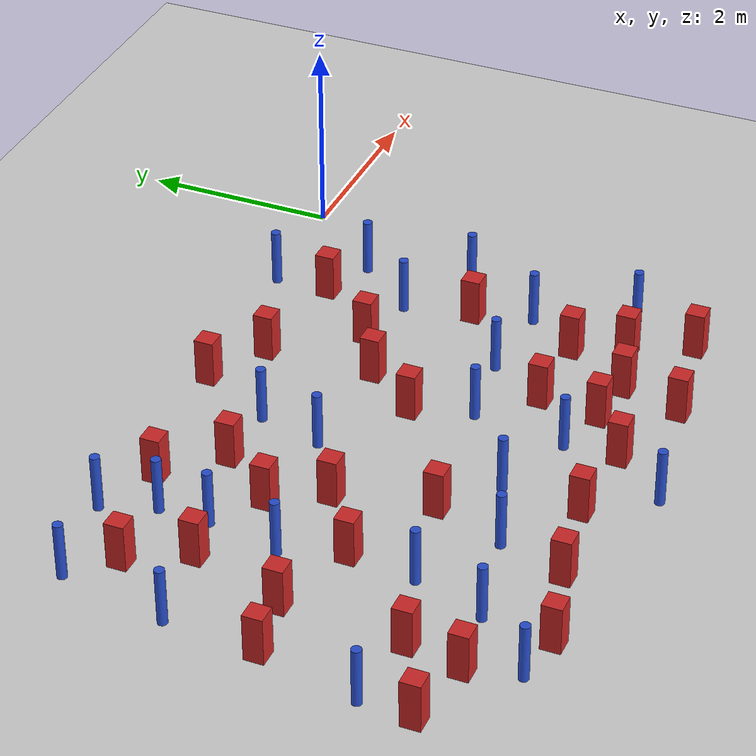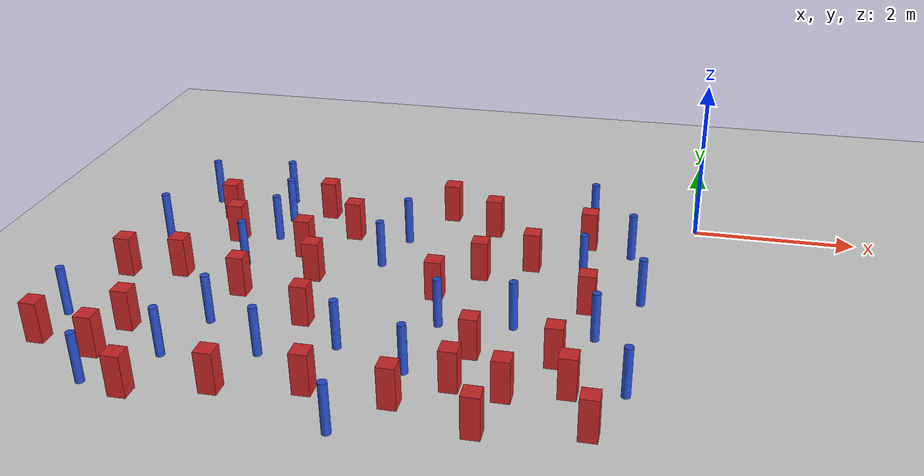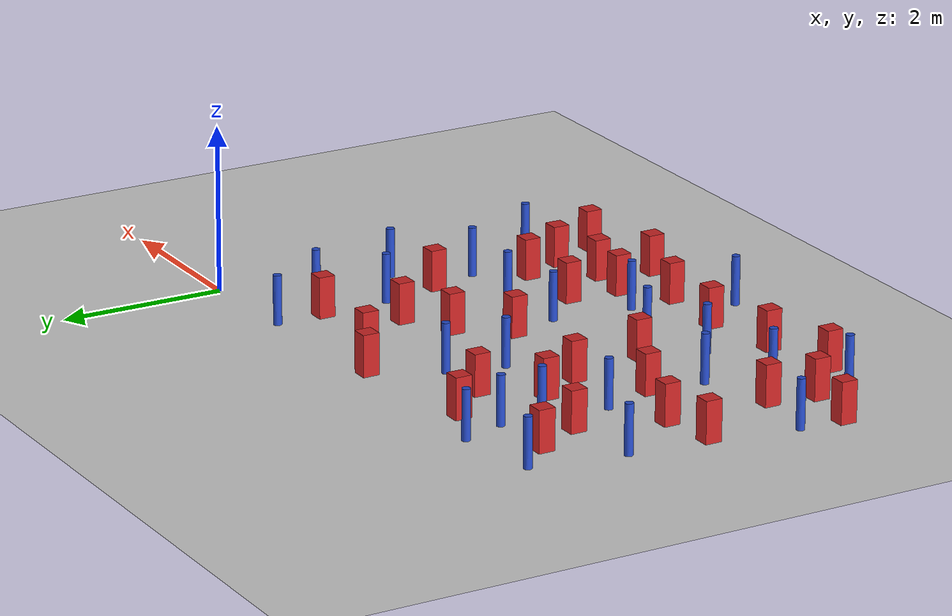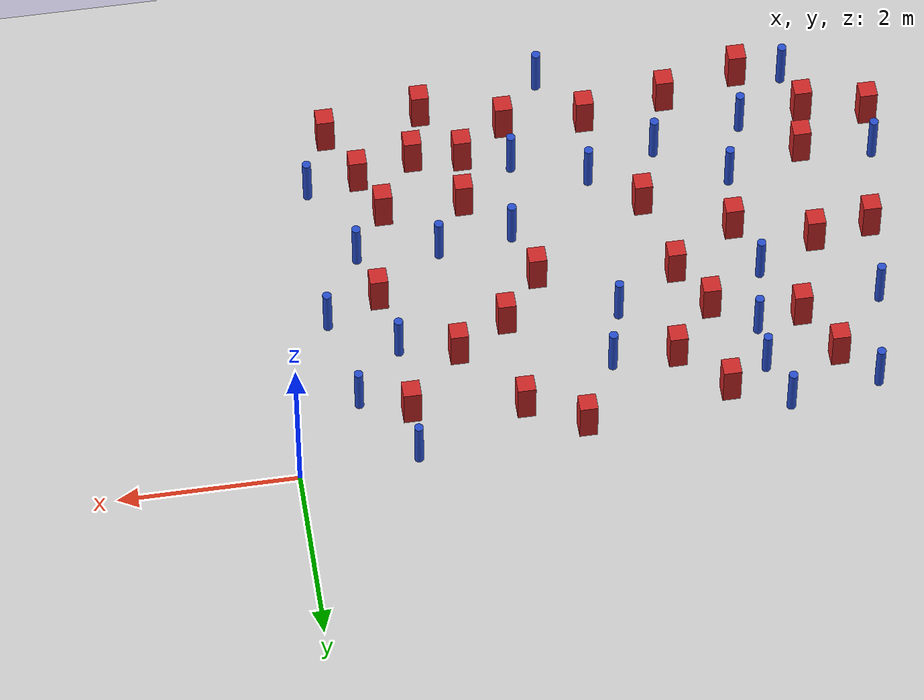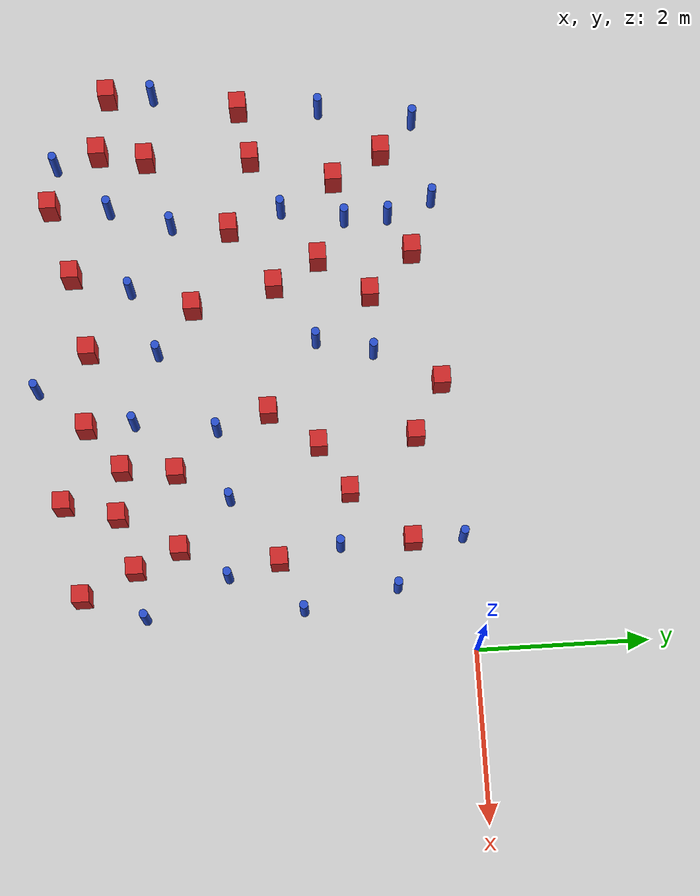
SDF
<sdf version="1.6">
 <world name="default">
  <model name="ground_plane">
   <static>1</static>
   <link name="link">
    <collision name="collision">
     <geometry><plane><normal>0 0 1</normal><size>100 100</size></plane></geometry>
     <surface><friction><ode><mu>100</mu><mu2>50</mu2></ode></friction></surface>
    </collision>
    <visual name="visual">
     <cast_shadows>0</cast_shadows>
     <geometry><plane><normal>0 0 1</normal><size>100 100</size></plane></geometry>
     <material>
      <ambient>1.0 1.0 1.0 1.0</ambient>
      <diffuse>0.8 0.8 0.8 1.0</diffuse>
      <specular>0.01 0.01 0.01 1.000000</specular>
     </material>
    </visual>
   </link>
  </model>
  <model name="square_post_obstacle2">
   <static>true</static>
   <pose>-1.97392428665 -4.67778224136 1.91545236811e-07 -7.35059704564e-06 1.12565212e-07 2.39332434364e-05</pose>
   <link name="link">
    <pose>0 0 0.25 0 -0 0</pose>
    <inertial>
     <mass>100</mass>
     <inertia>
      <ixx>0.166667</ixx>
      <ixy>0</ixy>
      <ixz>0</ixz>
      <iyy>0.166667</iyy>
      <iyz>0</iyz>
      <izz>0.166667</izz>
     </inertia>
    </inertial>
    <collision name="collision"><geometry><box><size>.2 .2 .5</size></box></geometry></collision>
    <visual name="visual">
     <geometry><box><size>.2 .2 .5</size></box></geometry>
     <material>
      <script><name>Gazebo/Red</name><uri>file://media/materials/scripts/gazebo.material</uri></script>
     </material>
    </visual>
   </link>
  </model>
  <model name="pole_obstacle3">
   <static>true</static>
   <pose>-2.89417251278 -3.81996052843 7.38925637345e-09 -8.47170692798e-08 1.24976764939e-08 -1.74513093025e-07</pose>
   <link name="link">
    <pose>0 0 0.3 0 -0 0</pose>
    <inertial>
     <mass>1</mass>
     <inertia><ixx>0.145833</ixx><ixy>0</ixy><ixz>0</ixz><iyy>0.145833</iyy><iyz>0</iyz><izz>0.125</izz></inertia>
    </inertial>
    <collision name="collision">
     <geometry><cylinder><radius>0.05</radius><length>.6</length></cylinder></geometry>
    </collision>
    <visual name="visual">
     <geometry><cylinder><radius>0.05</radius><length>.6</length></cylinder></geometry>
     <material>
      <script><name>Gazebo/Blue</name><uri>file://media/materials/scripts/gazebo.material</uri></script>
     </material>
    </visual>
   </link>
  </model>
  <model name="square_post_obstacle6">
   <static>true</static>
   <pose>-4.81822613164 -0.429306550397 1.91545236811e-07 -7.35059704564e-06 1.12565212e-07 2.39332434364e-05</pose>
   <link name="link">
    <pose>0 0 0.25 0 -0 0</pose>
    <inertial>
     <mass>100</mass>
     <inertia>
      <ixx>0.166667</ixx>
      <ixy>0</ixy>
      <ixz>0</ixz>
      <iyy>0.166667</iyy>
      <iyz>0</iyz>
      <izz>0.166667</izz>
     </inertia>
    </inertial>
    <collision name="collision"><geometry><box><size>.2 .2 .5</size></box></geometry></collision>
    <visual name="visual">
     <geometry><box><size>.2 .2 .5</size></box></geometry>
     <material>
      <script><name>Gazebo/Red</name><uri>file://media/materials/scripts/gazebo.material</uri></script>
     </material>
    </visual>
   </link>
  </model>
  <model name="square_post_obstacle11">
   <static>true</static>
   <pose>-4.27293090781 -3.06913041119 1.91545236811e-07 -7.35059704564e-06 1.12565212e-07 2.39332434364e-05</pose>
   <link name="link">
    <pose>0 0 0.25 0 -0 0</pose>
    <inertial>
     <mass>100</mass>
     <inertia>
      <ixx>0.166667</ixx>
      <ixy>0</ixy>
      <ixz>0</ixz>
      <iyy>0.166667</iyy>
      <iyz>0</iyz>
      <izz>0.166667</izz>
     </inertia>
    </inertial>
    <collision name="collision"><geometry><box><size>.2 .2 .5</size></box></geometry></collision>
    <visual name="visual">
     <geometry><box><size>.2 .2 .5</size></box></geometry>
     <material>
      <script><name>Gazebo/Red</name><uri>file://media/materials/scripts/gazebo.material</uri></script>
     </material>
    </visual>
   </link>
  </model>
  <model name="square_post_obstacle21">
   <static>true</static>
   <pose>-5.22307568444 -2.58926652539 1.91545236811e-07 -7.35059704564e-06 1.12565212e-07 2.39332434364e-05</pose>
   <link name="link">
    <pose>0 0 0.25 0 -0 0</pose>
    <inertial>
     <mass>100</mass>
     <inertia>
      <ixx>0.166667</ixx>
      <ixy>0</ixy>
      <ixz>0</ixz>
      <iyy>0.166667</iyy>
      <iyz>0</iyz>
      <izz>0.166667</izz>
     </inertia>
    </inertial>
    <collision name="collision"><geometry><box><size>.2 .2 .5</size></box></geometry></collision>
    <visual name="visual">
     <geometry><box><size>.2 .2 .5</size></box></geometry>
     <material>
      <script><name>Gazebo/Red</name><uri>file://media/materials/scripts/gazebo.material</uri></script>
     </material>
    </visual>
   </link>
  </model>
  <model name="square_post_obstacle28">
   <static>true</static>
   <pose>-2.51509299981 -1.67289607475 1.91545236811e-07 -7.35059704564e-06 1.12565212e-07 2.39332434364e-05</pose>
   <link name="link">
    <pose>0 0 0.25 0 -0 0</pose>
    <inertial>
     <mass>100</mass>
     <inertia>
      <ixx>0.166667</ixx>
      <ixy>0</ixy>
      <ixz>0</ixz>
      <iyy>0.166667</iyy>
      <iyz>0</iyz>
      <izz>0.166667</izz>
     </inertia>
    </inertial>
    <collision name="collision"><geometry><box><size>.2 .2 .5</size></box></geometry></collision>
    <visual name="visual">
     <geometry><box><size>.2 .2 .5</size></box></geometry>
     <material>
      <script><name>Gazebo/Red</name><uri>file://media/materials/scripts/gazebo.material</uri></script>
     </material>
    </visual>
   </link>
  </model>
  <model name="square_post_obstacle32">
   <static>true</static>
   <pose>-0.869865250518 -4.49653832143 1.91545236811e-07 -7.35059704564e-06 1.12565212e-07 2.39332434364e-05</pose>
   <link name="link">
    <pose>0 0 0.25 0 -0 0</pose>
    <inertial>
     <mass>100</mass>
     <inertia>
      <ixx>0.166667</ixx>
      <ixy>0</ixy>
      <ixz>0</ixz>
      <iyy>0.166667</iyy>
      <iyz>0</iyz>
      <izz>0.166667</izz>
     </inertia>
    </inertial>
    <collision name="collision"><geometry><box><size>.2 .2 .5</size></box></geometry></collision>
    <visual name="visual">
     <geometry><box><size>.2 .2 .5</size></box></geometry>
     <material>
      <script><name>Gazebo/Red</name><uri>file://media/materials/scripts/gazebo.material</uri></script>
     </material>
    </visual>
   </link>
  </model>
  <model name="pole_obstacle28">
   <static>true</static>
   <pose>-4.52370034235 -3.79873503142 7.38925637345e-09 -8.47170692798e-08 1.24976764937e-08 -1.74513093023e-07</pose>
   <link name="link">
    <pose>0 0 0.3 0 -0 0</pose>
    <inertial>
     <mass>1</mass>
     <inertia><ixx>0.145833</ixx><ixy>0</ixy><ixz>0</ixz><iyy>0.145833</iyy><iyz>0</iyz><izz>0.125</izz></inertia>
    </inertial>
    <collision name="collision">
     <geometry><cylinder><radius>0.05</radius><length>.6</length></cylinder></geometry>
    </collision>
    <visual name="visual">
     <geometry><cylinder><radius>0.05</radius><length>.6</length></cylinder></geometry>
     <material>
      <script><name>Gazebo/Blue</name><uri>file://media/materials/scripts/gazebo.material</uri></script>
     </material>
    </visual>
   </link>
  </model>
  <model name="pole_obstacle30">
   <static>true</static>
   <pose>-6.13165732457 -4.62961486405 7.38925637345e-09 -8.47170692796e-08 1.24976764786e-08 -1.74513093032e-07</pose>
   <link name="link">
    <pose>0 0 0.3 0 -0 0</pose>
    <inertial>
     <mass>1</mass>
     <inertia><ixx>0.145833</ixx><ixy>0</ixy><ixz>0</ixz><iyy>0.145833</iyy><iyz>0</iyz><izz>0.125</izz></inertia>
    </inertial>
    <collision name="collision">
     <geometry><cylinder><radius>0.05</radius><length>.6</length></cylinder></geometry>
    </collision>
    <visual name="visual">
     <geometry><cylinder><radius>0.05</radius><length>.6</length></cylinder></geometry>
     <material>
      <script><name>Gazebo/Blue</name><uri>file://media/materials/scripts/gazebo.material</uri></script>
     </material>
    </visual>
   </link>
  </model>
  <model name="square_post_obstacle37">
   <static>true</static>
   <pose>-2.56019366507 -0.532557655933 1.91545236811e-07 -7.35059704564e-06 1.12565212e-07 2.39332434364e-05</pose>
   <link name="link">
    <pose>0 0 0.25 0 -0 0</pose>
    <inertial>
     <mass>100</mass>
     <inertia>
      <ixx>0.166667</ixx>
      <ixy>0</ixy>
      <ixz>0</ixz>
      <iyy>0.166667</iyy>
      <iyz>0</iyz>
      <izz>0.166667</izz>
     </inertia>
    </inertial>
    <collision name="collision"><geometry><box><size>.2 .2 .5</size></box></geometry></collision>
    <visual name="visual">
     <geometry><box><size>.2 .2 .5</size></box></geometry>
     <material>
      <script><name>Gazebo/Red</name><uri>file://media/materials/scripts/gazebo.material</uri></script>
     </material>
    </visual>
   </link>
  </model>
  <model name="pole_obstacle39">
   <static>true</static>
   <pose>-6.67404969562 -1.43670576364 7.38925637345e-09 -8.471706928e-08 1.24976765134e-08 -1.74513093015e-07</pose>
   <link name="link">
    <pose>0 0 0.3 0 -0 0</pose>
    <inertial>
     <mass>1</mass>
     <inertia><ixx>0.145833</ixx><ixy>0</ixy><ixz>0</ixz><iyy>0.145833</iyy><iyz>0</iyz><izz>0.125</izz></inertia>
    </inertial>
    <collision name="collision">
     <geometry><cylinder><radius>0.05</radius><length>.6</length></cylinder></geometry>
    </collision>
    <visual name="visual">
     <geometry><cylinder><radius>0.05</radius><length>.6</length></cylinder></geometry>
     <material>
      <script><name>Gazebo/Blue</name><uri>file://media/materials/scripts/gazebo.material</uri></script>
     </material>
    </visual>
   </link>
  </model>
  <model name="square_post_obstacle40">
   <static>true</static>
   <pose>-1.16608917577 -2.20801848528 1.91545236811e-07 -7.35059704564e-06 1.12565212e-07 2.39332434364e-05</pose>
   <link name="link">
    <pose>0 0 0.25 0 -0 0</pose>
    <inertial>
     <mass>100</mass>
     <inertia>
      <ixx>0.166667</ixx>
      <ixy>0</ixy>
      <ixz>0</ixz>
      <iyy>0.166667</iyy>
      <iyz>0</iyz>
      <izz>0.166667</izz>
     </inertia>
    </inertial>
    <collision name="collision"><geometry><box><size>.2 .2 .5</size></box></geometry></collision>
    <visual name="visual">
     <geometry><box><size>.2 .2 .5</size></box></geometry>
     <material>
      <script><name>Gazebo/Red</name><uri>file://media/materials/scripts/gazebo.material</uri></script>
     </material>
    </visual>
   </link>
  </model>
  <model name="square_post_obstacle43">
   <static>true</static>
   <pose>-4.48571997923 -2.0919490353 1.91545236811e-07 -7.35059704564e-06 1.12565212e-07 2.39332434364e-05</pose>
   <link name="link">
    <pose>0 0 0.25 0 -0 0</pose>
    <inertial>
     <mass>100</mass>
     <inertia>
      <ixx>0.166667</ixx>
      <ixy>0</ixy>
      <ixz>0</ixz>
      <iyy>0.166667</iyy>
      <iyz>0</iyz>
      <izz>0.166667</izz>
     </inertia>
    </inertial>
    <collision name="collision"><geometry><box><size>.2 .2 .5</size></box></geometry></collision>
    <visual name="visual">
     <geometry><box><size>.2 .2 .5</size></box></geometry>
     <material>
      <script><name>Gazebo/Red</name><uri>file://media/materials/scripts/gazebo.material</uri></script>
     </material>
    </visual>
   </link>
  </model>
  <model name="square_post_obstacle44">
   <static>true</static>
   <pose>-6.09604330642 -2.29145000126 1.91545236811e-07 -7.35059704564e-06 1.12565212e-07 2.39332434364e-05</pose>
   <link name="link">
    <pose>0 0 0.25 0 -0 0</pose>
    <inertial>
     <mass>100</mass>
     <inertia>
      <ixx>0.166667</ixx>
      <ixy>0</ixy>
      <ixz>0</ixz>
      <iyy>0.166667</iyy>
      <iyz>0</iyz>
      <izz>0.166667</izz>
     </inertia>
    </inertial>
    <collision name="collision"><geometry><box><size>.2 .2 .5</size></box></geometry></collision>
    <visual name="visual">
     <geometry><box><size>.2 .2 .5</size></box></geometry>
     <material>
      <script><name>Gazebo/Red</name><uri>file://media/materials/scripts/gazebo.material</uri></script>
     </material>
    </visual>
   </link>
  </model>
  <model name="pole_obstacle58">
   <static>true</static>
   <pose>-3.72904181503 -3.50864067542 7.38925637345e-09 -8.47170692798e-08 1.24976764939e-08 -1.74513093025e-07</pose>
   <link name="link">
    <pose>0 0 0.3 0 -0 0</pose>
    <inertial>
     <mass>1</mass>
     <inertia><ixx>0.145833</ixx><ixy>0</ixy><ixz>0</ixz><iyy>0.145833</iyy><iyz>0</iyz><izz>0.125</izz></inertia>
    </inertial>
    <collision name="collision">
     <geometry><cylinder><radius>0.05</radius><length>.6</length></cylinder></geometry>
    </collision>
    <visual name="visual">
     <geometry><cylinder><radius>0.05</radius><length>.6</length></cylinder></geometry>
     <material>
      <script><name>Gazebo/Blue</name><uri>file://media/materials/scripts/gazebo.material</uri></script>
     </material>
    </visual>
   </link>
  </model>
  <model name="pole_obstacle64">
   <static>true</static>
   <pose>-0.766285810556 -0.860315391156 7.38925637345e-09 -8.47170692799e-08 1.24976765008e-08 -1.7451309302e-07</pose>
   <link name="link">
    <pose>0 0 0.3 0 -0 0</pose>
    <inertial>
     <mass>1</mass>
     <inertia><ixx>0.145833</ixx><ixy>0</ixy><ixz>0</ixz><iyy>0.145833</iyy><iyz>0</iyz><izz>0.125</izz></inertia>
    </inertial>
    <collision name="collision">
     <geometry><cylinder><radius>0.05</radius><length>.6</length></cylinder></geometry>
    </collision>
    <visual name="visual">
     <geometry><cylinder><radius>0.05</radius><length>.6</length></cylinder></geometry>
     <material>
      <script><name>Gazebo/Blue</name><uri>file://media/materials/scripts/gazebo.material</uri></script>
     </material>
    </visual>
   </link>
  </model>
  <model name="square_post_obstacle67">
   <static>true</static>
   <pose>-1.93774062264 -1.34343785562 1.91545236811e-07 -7.35059704564e-06 1.12565212e-07 2.39332434364e-05</pose>
   <link name="link">
    <pose>0 0 0.25 0 -0 0</pose>
    <inertial>
     <mass>100</mass>
     <inertia>
      <ixx>0.166667</ixx>
      <ixy>0</ixy>
      <ixz>0</ixz>
      <iyy>0.166667</iyy>
      <iyz>0</iyz>
      <izz>0.166667</izz>
     </inertia>
    </inertial>
    <collision name="collision"><geometry><box><size>.2 .2 .5</size></box></geometry></collision>
    <visual name="visual">
     <geometry><box><size>.2 .2 .5</size></box></geometry>
     <material>
      <script><name>Gazebo/Red</name><uri>file://media/materials/scripts/gazebo.material</uri></script>
     </material>
    </visual>
   </link>
  </model>
  <model name="pole_obstacle71">
   <static>true</static>
   <pose>-1.29423140517 -1.49068631142 7.38925637345e-09 -8.471706928e-08 1.24976765079e-08 -1.74513093017e-07</pose>
   <link name="link">
    <pose>0 0 0.3 0 -0 0</pose>
    <inertial>
     <mass>1</mass>
     <inertia><ixx>0.145833</ixx><ixy>0</ixy><ixz>0</ixz><iyy>0.145833</iyy><iyz>0</iyz><izz>0.125</izz></inertia>
    </inertial>
    <collision name="collision">
     <geometry><cylinder><radius>0.05</radius><length>.6</length></cylinder></geometry>
    </collision>
    <visual name="visual">
     <geometry><cylinder><radius>0.05</radius><length>.6</length></cylinder></geometry>
     <material>
      <script><name>Gazebo/Blue</name><uri>file://media/materials/scripts/gazebo.material</uri></script>
     </material>
    </visual>
   </link>
  </model>
  <model name="square_post_obstacle76">
   <static>true</static>
   <pose>-6.27226061292 -4.11420562945 1.91545236811e-07 -7.35059704564e-06 1.12565212e-07 2.39332434364e-05</pose>
   <link name="link">
    <pose>0 0 0.25 0 -0 0</pose>
    <inertial>
     <mass>100</mass>
     <inertia>
      <ixx>0.166667</ixx>
      <ixy>0</ixy>
      <ixz>0</ixz>
      <iyy>0.166667</iyy>
      <iyz>0</iyz>
      <izz>0.166667</izz>
     </inertia>
    </inertial>
    <collision name="collision"><geometry><box><size>.2 .2 .5</size></box></geometry></collision>
    <visual name="visual">
     <geometry><box><size>.2 .2 .5</size></box></geometry>
     <material>
      <script><name>Gazebo/Red</name><uri>file://media/materials/scripts/gazebo.material</uri></script>
     </material>
    </visual>
   </link>
  </model>
  <model name="square_post_obstacle79">
   <static>true</static>
   <pose>-1.8007418346 -4.04795259998 1.91545236811e-07 -7.35059704564e-06 1.12565212e-07 2.39332434364e-05</pose>
   <link name="link">
    <pose>0 0 0.25 0 -0 0</pose>
    <inertial>
     <mass>100</mass>
     <inertia>
      <ixx>0.166667</ixx>
      <ixy>0</ixy>
      <ixz>0</ixz>
      <iyy>0.166667</iyy>
      <iyz>0</iyz>
      <izz>0.166667</izz>
     </inertia>
    </inertial>
    <collision name="collision"><geometry><box><size>.2 .2 .5</size></box></geometry></collision>
    <visual name="visual">
     <geometry><box><size>.2 .2 .5</size></box></geometry>
     <material>
      <script><name>Gazebo/Red</name><uri>file://media/materials/scripts/gazebo.material</uri></script>
     </material>
    </visual>
   </link>
  </model>
  <model name="pole_obstacle82">
   <static>true</static>
   <pose>-3.35331693669 -4.94060559662 7.38925637345e-09 -8.47170692798e-08 1.24976765033e-08 -1.74513093019e-07</pose>
   <link name="link">
    <pose>0 0 0.3 0 -0 0</pose>
    <inertial>
     <mass>1</mass>
     <inertia><ixx>0.145833</ixx><ixy>0</ixy><ixz>0</ixz><iyy>0.145833</iyy><iyz>0</iyz><izz>0.125</izz></inertia>
    </inertial>
    <collision name="collision">
     <geometry><cylinder><radius>0.05</radius><length>.6</length></cylinder></geometry>
    </collision>
    <visual name="visual">
     <geometry><cylinder><radius>0.05</radius><length>.6</length></cylinder></geometry>
     <material>
      <script><name>Gazebo/Blue</name><uri>file://media/materials/scripts/gazebo.material</uri></script>
     </material>
    </visual>
   </link>
  </model>
  <model name="pole_obstacle88">
   <static>true</static>
   <pose>-1.31623722805 -0.0630296943746 7.38925637345e-09 -8.47170692799e-08 1.24976765014e-08 -1.74513093019e-07</pose>
   <link name="link">
    <pose>0 0 0.3 0 -0 0</pose>
    <inertial>
     <mass>1</mass>
     <inertia><ixx>0.145833</ixx><ixy>0</ixy><ixz>0</ixz><iyy>0.145833</iyy><iyz>0</iyz><izz>0.125</izz></inertia>
    </inertial>
    <collision name="collision">
     <geometry><cylinder><radius>0.05</radius><length>.6</length></cylinder></geometry>
    </collision>
    <visual name="visual">
     <geometry><cylinder><radius>0.05</radius><length>.6</length></cylinder></geometry>
     <material>
      <script><name>Gazebo/Blue</name><uri>file://media/materials/scripts/gazebo.material</uri></script>
     </material>
    </visual>
   </link>
  </model>
  <model name="square_post_obstacle82">
   <static>true</static>
   <pose>-5.77132326332 -1.3087706814 1.91545236811e-07 -7.35059704564e-06 1.12565212e-07 2.39332434364e-05</pose>
   <link name="link">
    <pose>0 0 0.25 0 -0 0</pose>
    <inertial>
     <mass>100</mass>
     <inertia>
      <ixx>0.166667</ixx>
      <ixy>0</ixy>
      <ixz>0</ixz>
      <iyy>0.166667</iyy>
      <iyz>0</iyz>
      <izz>0.166667</izz>
     </inertia>
    </inertial>
    <collision name="collision"><geometry><box><size>.2 .2 .5</size></box></geometry></collision>
    <visual name="visual">
     <geometry><box><size>.2 .2 .5</size></box></geometry>
     <material>
      <script><name>Gazebo/Red</name><uri>file://media/materials/scripts/gazebo.material</uri></script>
     </material>
    </visual>
   </link>
  </model>
  <model name="pole_obstacle92">
   <static>true</static>
   <pose>-5.26747947596 -0.685431130049 7.38925637345e-09 -8.47170692799e-08 1.24976765038e-08 -1.74513093018e-07</pose>
   <link name="link">
    <pose>0 0 0.3 0 -0 0</pose>
    <inertial>
     <mass>1</mass>
     <inertia><ixx>0.145833</ixx><ixy>0</ixy><ixz>0</ixz><iyy>0.145833</iyy><iyz>0</iyz><izz>0.125</izz></inertia>
    </inertial>
    <collision name="collision">
     <geometry><cylinder><radius>0.05</radius><length>.6</length></cylinder></geometry>
    </collision>
    <visual name="visual">
     <geometry><cylinder><radius>0.05</radius><length>.6</length></cylinder></geometry>
     <material>
      <script><name>Gazebo/Blue</name><uri>file://media/materials/scripts/gazebo.material</uri></script>
     </material>
    </visual>
   </link>
  </model>
  <model name="square_post_obstacle83">
   <static>true</static>
   <pose>-2.35544456244 -3.98343034399 1.91545236811e-07 -7.35059704564e-06 1.12565212e-07 2.39332434364e-05</pose>
   <link name="link">
    <pose>0 0 0.25 0 -0 0</pose>
    <inertial>
     <mass>100</mass>
     <inertia>
      <ixx>0.166667</ixx>
      <ixy>0</ixy>
      <ixz>0</ixz>
      <iyy>0.166667</iyy>
      <iyz>0</iyz>
      <izz>0.166667</izz>
     </inertia>
    </inertial>
    <collision name="collision"><geometry><box><size>.2 .2 .5</size></box></geometry></collision>
    <visual name="visual">
     <geometry><box><size>.2 .2 .5</size></box></geometry>
     <material>
      <script><name>Gazebo/Red</name><uri>file://media/materials/scripts/gazebo.material</uri></script>
     </material>
    </visual>
   </link>
  </model>
  <model name="square_post_obstacle85">
   <static>true</static>
   <pose>-1.37164865592 -3.35105875206 1.91545236811e-07 -7.35059704564e-06 1.12565212e-07 2.39332434364e-05</pose>
   <link name="link">
    <pose>0 0 0.25 0 -0 0</pose>
    <inertial>
     <mass>100</mass>
     <inertia>
      <ixx>0.166667</ixx>
      <ixy>0</ixy>
      <ixz>0</ixz>
      <iyy>0.166667</iyy>
      <iyz>0</iyz>
      <izz>0.166667</izz>
     </inertia>
    </inertial>
    <collision name="collision"><geometry><box><size>.2 .2 .5</size></box></geometry></collision>
    <visual name="visual">
     <geometry><box><size>.2 .2 .5</size></box></geometry>
     <material>
      <script><name>Gazebo/Red</name><uri>file://media/materials/scripts/gazebo.material</uri></script>
     </material>
    </visual>
   </link>
  </model>
  <model name="square_post_obstacle89">
   <static>true</static>
   <pose>-3.80377759794 -4.32359901004 1.91545236811e-07 -7.35059704564e-06 1.12565212e-07 2.39332434364e-05</pose>
   <link name="link">
    <pose>0 0 0.25 0 -0 0</pose>
    <inertial>
     <mass>100</mass>
     <inertia>
      <ixx>0.166667</ixx>
      <ixy>0</ixy>
      <ixz>0</ixz>
      <iyy>0.166667</iyy>
      <iyz>0</iyz>
      <izz>0.166667</izz>
     </inertia>
    </inertial>
    <collision name="collision"><geometry><box><size>.2 .2 .5</size></box></geometry></collision>
    <visual name="visual">
     <geometry><box><size>.2 .2 .5</size></box></geometry>
     <material>
      <script><name>Gazebo/Red</name><uri>file://media/materials/scripts/gazebo.material</uri></script>
     </material>
    </visual>
   </link>
  </model>
  <model name="pole_obstacle113">
   <static>true</static>
   <pose>-5.5427301714 -4.01271161176 7.38925637345e-09 -8.47170692796e-08 1.24976764791e-08 -1.74513093031e-07</pose>
   <link name="link">
    <pose>0 0 0.3 0 -0 0</pose>
    <inertial>
     <mass>1</mass>
     <inertia><ixx>0.145833</ixx><ixy>0</ixy><ixz>0</ixz><iyy>0.145833</iyy><iyz>0</iyz><izz>0.125</izz></inertia>
    </inertial>
    <collision name="collision">
     <geometry><cylinder><radius>0.05</radius><length>.6</length></cylinder></geometry>
    </collision>
    <visual name="visual">
     <geometry><cylinder><radius>0.05</radius><length>.6</length></cylinder></geometry>
     <material>
      <script><name>Gazebo/Blue</name><uri>file://media/materials/scripts/gazebo.material</uri></script>
     </material>
    </visual>
   </link>
  </model>
  <model name="square_post_obstacle100">
   <static>true</static>
   <pose>-6.74523713699 -2.4018738861 1.91545236811e-07 -7.35059704564e-06 1.12565212e-07 2.39332434364e-05</pose>
   <link name="link">
    <pose>0 0 0.25 0 -0 0</pose>
    <inertial>
     <mass>100</mass>
     <inertia>
      <ixx>0.166667</ixx>
      <ixy>0</ixy>
      <ixz>0</ixz>
      <iyy>0.166667</iyy>
      <iyz>0</iyz>
      <izz>0.166667</izz>
     </inertia>
    </inertial>
    <collision name="collision"><geometry><box><size>.2 .2 .5</size></box></geometry></collision>
    <visual name="visual">
     <geometry><box><size>.2 .2 .5</size></box></geometry>
     <material>
      <script><name>Gazebo/Red</name><uri>file://media/materials/scripts/gazebo.material</uri></script>
     </material>
    </visual>
   </link>
  </model>
  <model name="pole_obstacle114">
   <static>true</static>
   <pose>-0.564889809127 -1.95454432766 7.38925637345e-09 -8.47170692798e-08 1.24976765007e-08 -1.7451309302e-07</pose>
   <link name="link">
    <pose>0 0 0.3 0 -0 0</pose>
    <inertial>
     <mass>1</mass>
     <inertia><ixx>0.145833</ixx><ixy>0</ixy><ixz>0</ixz><iyy>0.145833</iyy><iyz>0</iyz><izz>0.125</izz></inertia>
    </inertial>
    <collision name="collision">
     <geometry><cylinder><radius>0.05</radius><length>.6</length></cylinder></geometry>
    </collision>
    <visual name="visual">
     <geometry><cylinder><radius>0.05</radius><length>.6</length></cylinder></geometry>
     <material>
      <script><name>Gazebo/Blue</name><uri>file://media/materials/scripts/gazebo.material</uri></script>
     </material>
    </visual>
   </link>
  </model>
  <model name="square_post_obstacle107">
   <static>true</static>
   <pose>-2.88508328774 -4.3794269187 1.91545236811e-07 -7.35059704564e-06 1.12565212e-07 2.39332434364e-05</pose>
   <link name="link">
    <pose>0 0 0.25 0 -0 0</pose>
    <inertial>
     <mass>100</mass>
     <inertia>
      <ixx>0.166667</ixx>
      <ixy>0</ixy>
      <ixz>0</ixz>
      <iyy>0.166667</iyy>
      <iyz>0</iyz>
      <izz>0.166667</izz>
     </inertia>
    </inertial>
    <collision name="collision"><geometry><box><size>.2 .2 .5</size></box></geometry></collision>
    <visual name="visual">
     <geometry><box><size>.2 .2 .5</size></box></geometry>
     <material>
      <script><name>Gazebo/Red</name><uri>file://media/materials/scripts/gazebo.material</uri></script>
     </material>
    </visual>
   </link>
  </model>
  <model name="square_post_obstacle108">
   <static>true</static>
   <pose>-5.62178286018 -4.71851040436 1.91545236811e-07 -7.35059704564e-06 1.12565212e-07 2.39332434364e-05</pose>
   <link name="link">
    <pose>0 0 0.25 0 -0 0</pose>
    <inertial>
     <mass>100</mass>
     <inertia>
      <ixx>0.166667</ixx>
      <ixy>0</ixy>
      <ixz>0</ixz>
      <iyy>0.166667</iyy>
      <iyz>0</iyz>
      <izz>0.166667</izz>
     </inertia>
    </inertial>
    <collision name="collision"><geometry><box><size>.2 .2 .5</size></box></geometry></collision>
    <visual name="visual">
     <geometry><box><size>.2 .2 .5</size></box></geometry>
     <material>
      <script><name>Gazebo/Red</name><uri>file://media/materials/scripts/gazebo.material</uri></script>
     </material>
    </visual>
   </link>
  </model>
  <model name="pole_obstacle120">
   <static>true</static>
   <pose>-0.577045901425 -3.77681334621 7.38925637345e-09 -8.47170692799e-08 1.2497676509e-08 -1.74513093016e-07</pose>
   <link name="link">
    <pose>0 0 0.3 0 -0 0</pose>
    <inertial>
     <mass>1</mass>
     <inertia><ixx>0.145833</ixx><ixy>0</ixy><ixz>0</ixz><iyy>0.145833</iyy><iyz>0</iyz><izz>0.125</izz></inertia>
    </inertial>
    <collision name="collision">
     <geometry><cylinder><radius>0.05</radius><length>.6</length></cylinder></geometry>
    </collision>
    <visual name="visual">
     <geometry><cylinder><radius>0.05</radius><length>.6</length></cylinder></geometry>
     <material>
      <script><name>Gazebo/Blue</name><uri>file://media/materials/scripts/gazebo.material</uri></script>
     </material>
    </visual>
   </link>
  </model>
  <model name="pole_obstacle121">
   <static>true</static>
   <pose>-1.92230477384 -2.74424361371 7.38925637345e-09 -8.47170692799e-08 1.24976765053e-08 -1.74513093017e-07</pose>
   <link name="link">
    <pose>0 0 0.3 0 -0 0</pose>
    <inertial>
     <mass>1</mass>
     <inertia><ixx>0.145833</ixx><ixy>0</ixy><ixz>0</ixz><iyy>0.145833</iyy><iyz>0</iyz><izz>0.125</izz></inertia>
    </inertial>
    <collision name="collision">
     <geometry><cylinder><radius>0.05</radius><length>.6</length></cylinder></geometry>
    </collision>
    <visual name="visual">
     <geometry><cylinder><radius>0.05</radius><length>.6</length></cylinder></geometry>
     <material>
      <script><name>Gazebo/Blue</name><uri>file://media/materials/scripts/gazebo.material</uri></script>
     </material>
    </visual>
   </link>
  </model>
  <model name="square_post_obstacle123">
   <static>true</static>
   <pose>-1.31667569047 -0.652684834743 1.91545236811e-07 -7.35059704564e-06 1.12565212e-07 2.39332434364e-05</pose>
   <link name="link">
    <pose>0 0 0.25 0 -0 0</pose>
    <inertial>
     <mass>100</mass>
     <inertia>
      <ixx>0.166667</ixx>
      <ixy>0</ixy>
      <ixz>0</ixz>
      <iyy>0.166667</iyy>
      <iyz>0</iyz>
      <izz>0.166667</izz>
     </inertia>
    </inertial>
    <collision name="collision"><geometry><box><size>.2 .2 .5</size></box></geometry></collision>
    <visual name="visual">
     <geometry><box><size>.2 .2 .5</size></box></geometry>
     <material>
      <script><name>Gazebo/Red</name><uri>file://media/materials/scripts/gazebo.material</uri></script>
     </material>
    </visual>
   </link>
  </model>
  <model name="square_post_obstacle125">
   <static>true</static>
   <pose>-4.31482046002 -0.958355201482 1.91545236811e-07 -7.35059704564e-06 1.12565212e-07 2.39332434364e-05</pose>
   <link name="link">
    <pose>0 0 0.25 0 -0 0</pose>
    <inertial>
     <mass>100</mass>
     <inertia>
      <ixx>0.166667</ixx>
      <ixy>0</ixy>
      <ixz>0</ixz>
      <iyy>0.166667</iyy>
      <iyz>0</iyz>
      <izz>0.166667</izz>
     </inertia>
    </inertial>
    <collision name="collision"><geometry><box><size>.2 .2 .5</size></box></geometry></collision>
    <visual name="visual">
     <geometry><box><size>.2 .2 .5</size></box></geometry>
     <material>
      <script><name>Gazebo/Red</name><uri>file://media/materials/scripts/gazebo.material</uri></script>
     </material>
    </visual>
   </link>
  </model>
  <model name="pole_obstacle140">
   <static>true</static>
   <pose>-2.7601130647 -2.8528175543 7.38925637345e-09 -8.47170692798e-08 1.24976764939e-08 -1.74513093025e-07</pose>
   <link name="link">
    <pose>0 0 0.3 0 -0 0</pose>
    <inertial>
     <mass>1</mass>
     <inertia><ixx>0.145833</ixx><ixy>0</ixy><ixz>0</ixz><iyy>0.145833</iyy><iyz>0</iyz><izz>0.125</izz></inertia>
    </inertial>
    <collision name="collision">
     <geometry><cylinder><radius>0.05</radius><length>.6</length></cylinder></geometry>
    </collision>
    <visual name="visual">
     <geometry><cylinder><radius>0.05</radius><length>.6</length></cylinder></geometry>
     <material>
      <script><name>Gazebo/Blue</name><uri>file://media/materials/scripts/gazebo.material</uri></script>
     </material>
    </visual>
   </link>
  </model>
  <model name="square_post_obstacle140">
   <static>true</static>
   <pose>-4.78863765123 -1.55017651801 1.91545236811e-07 -7.35059704564e-06 1.12565212e-07 2.39332434364e-05</pose>
   <link name="link">
    <pose>0 0 0.25 0 -0 0</pose>
    <inertial>
     <mass>100</mass>
     <inertia>
      <ixx>0.166667</ixx>
      <ixy>0</ixy>
      <ixz>0</ixz>
      <iyy>0.166667</iyy>
      <iyz>0</iyz>
      <izz>0.166667</izz>
     </inertia>
    </inertial>
    <collision name="collision"><geometry><box><size>.2 .2 .5</size></box></geometry></collision>
    <visual name="visual">
     <geometry><box><size>.2 .2 .5</size></box></geometry>
     <material>
      <script><name>Gazebo/Red</name><uri>file://media/materials/scripts/gazebo.material</uri></script>
     </material>
    </visual>
   </link>
  </model>
  <model name="pole_obstacle152">
   <static>true</static>
   <pose>-1.00373444402 -2.80508732647 7.38925637345e-09 -8.47170692799e-08 1.24976765076e-08 -1.74513093016e-07</pose>
   <link name="link">
    <pose>0 0 0.3 0 -0 0</pose>
    <inertial>
     <mass>1</mass>
     <inertia><ixx>0.145833</ixx><ixy>0</ixy><ixz>0</ixz><iyy>0.145833</iyy><iyz>0</iyz><izz>0.125</izz></inertia>
    </inertial>
    <collision name="collision">
     <geometry><cylinder><radius>0.05</radius><length>.6</length></cylinder></geometry>
    </collision>
    <visual name="visual">
     <geometry><cylinder><radius>0.05</radius><length>.6</length></cylinder></geometry>
     <material>
      <script><name>Gazebo/Blue</name><uri>file://media/materials/scripts/gazebo.material</uri></script>
     </material>
    </visual>
   </link>
  </model>
  <model name="pole_obstacle161">
   <static>true</static>
   <pose>-5.45095422067 -0.14820200757 7.38925637345e-09 -8.471706928e-08 1.24976765188e-08 -1.74513093011e-07</pose>
   <link name="link">
    <pose>0 0 0.3 0 -0 0</pose>
    <inertial>
     <mass>1</mass>
     <inertia><ixx>0.145833</ixx><ixy>0</ixy><ixz>0</ixz><iyy>0.145833</iyy><iyz>0</iyz><izz>0.125</izz></inertia>
    </inertial>
    <collision name="collision">
     <geometry><cylinder><radius>0.05</radius><length>.6</length></cylinder></geometry>
    </collision>
    <visual name="visual">
     <geometry><cylinder><radius>0.05</radius><length>.6</length></cylinder></geometry>
     <material>
      <script><name>Gazebo/Blue</name><uri>file://media/materials/scripts/gazebo.material</uri></script>
     </material>
    </visual>
   </link>
  </model>
  <model name="pole_obstacle162">
   <static>true</static>
   <pose>-5.42120419035 -1.95719789617 7.38925637345e-09 -8.47170692801e-08 1.24976765219e-08 -1.74513093009e-07</pose>
   <link name="link">
    <pose>0 0 0.3 0 -0 0</pose>
    <inertial>
     <mass>1</mass>
     <inertia><ixx>0.145833</ixx><ixy>0</ixy><ixz>0</ixz><iyy>0.145833</iyy><iyz>0</iyz><izz>0.125</izz></inertia>
    </inertial>
    <collision name="collision">
     <geometry><cylinder><radius>0.05</radius><length>.6</length></cylinder></geometry>
    </collision>
    <visual name="visual">
     <geometry><cylinder><radius>0.05</radius><length>.6</length></cylinder></geometry>
     <material>
      <script><name>Gazebo/Blue</name><uri>file://media/materials/scripts/gazebo.material</uri></script>
     </material>
    </visual>
   </link>
  </model>
  <model name="square_post_obstacle155">
   <static>true</static>
   <pose>-2.94645149799 -2.23766348429 1.91545236811e-07 -7.35059704564e-06 1.12565212e-07 2.39332434364e-05</pose>
   <link name="link">
    <pose>0 0 0.25 0 -0 0</pose>
    <inertial>
     <mass>100</mass>
     <inertia>
      <ixx>0.166667</ixx>
      <ixy>0</ixy>
      <ixz>0</ixz>
      <iyy>0.166667</iyy>
      <iyz>0</iyz>
      <izz>0.166667</izz>
     </inertia>
    </inertial>
    <collision name="collision"><geometry><box><size>.2 .2 .5</size></box></geometry></collision>
    <visual name="visual">
     <geometry><box><size>.2 .2 .5</size></box></geometry>
     <material>
      <script><name>Gazebo/Red</name><uri>file://media/materials/scripts/gazebo.material</uri></script>
     </material>
    </visual>
   </link>
  </model>
  <model name="square_post_obstacle156">
   <static>true</static>
   <pose>-6.99785377474 -3.97157159182 1.91545236811e-07 -7.35059704564e-06 1.12565212e-07 2.39332434364e-05</pose>
   <link name="link">
    <pose>0 0 0.25 0 -0 0</pose>
    <inertial>
     <mass>100</mass>
     <inertia>
      <ixx>0.166667</ixx>
      <ixy>0</ixy>
      <ixz>0</ixz>
      <iyy>0.166667</iyy>
      <iyz>0</iyz>
      <izz>0.166667</izz>
     </inertia>
    </inertial>
    <collision name="collision"><geometry><box><size>.2 .2 .5</size></box></geometry></collision>
    <visual name="visual">
     <geometry><box><size>.2 .2 .5</size></box></geometry>
     <material>
      <script><name>Gazebo/Red</name><uri>file://media/materials/scripts/gazebo.material</uri></script>
     </material>
    </visual>
   </link>
  </model>
  <model name="pole_obstacle167">
   <static>true</static>
   <pose>-3.5983801231 -0.961397731586 7.38925637345e-09 -8.47170692807e-08 1.24976765555e-08 -1.74513093003e-07</pose>
   <link name="link">
    <pose>0 0 0.3 0 -0 0</pose>
    <inertial>
     <mass>1</mass>
     <inertia><ixx>0.145833</ixx><ixy>0</ixy><ixz>0</ixz><iyy>0.145833</iyy><iyz>0</iyz><izz>0.125</izz></inertia>
    </inertial>
    <collision name="collision">
     <geometry><cylinder><radius>0.05</radius><length>.6</length></cylinder></geometry>
    </collision>
    <visual name="visual">
     <geometry><cylinder><radius>0.05</radius><length>.6</length></cylinder></geometry>
     <material>
      <script><name>Gazebo/Blue</name><uri>file://media/materials/scripts/gazebo.material</uri></script>
     </material>
    </visual>
   </link>
  </model>
  <model name="pole_obstacle172">
   <static>true</static>
   <pose>-6.96600265156 -3.43134005608 7.38925637345e-09 -8.47170692798e-08 1.24976764937e-08 -1.74513093023e-07</pose>
   <link name="link">
    <pose>0 0 0.3 0 -0 0</pose>
    <inertial>
     <mass>1</mass>
     <inertia><ixx>0.145833</ixx><ixy>0</ixy><ixz>0</ixz><iyy>0.145833</iyy><iyz>0</iyz><izz>0.125</izz></inertia>
    </inertial>
    <collision name="collision">
     <geometry><cylinder><radius>0.05</radius><length>.6</length></cylinder></geometry>
    </collision>
    <visual name="visual">
     <geometry><cylinder><radius>0.05</radius><length>.6</length></cylinder></geometry>
     <material>
      <script><name>Gazebo/Blue</name><uri>file://media/materials/scripts/gazebo.material</uri></script>
     </material>
    </visual>
   </link>
  </model>
  <model name="square_post_obstacle169">
   <static>true</static>
   <pose>-1.1563745944 -3.87011609039 1.91545236811e-07 -7.35059704564e-06 1.12565212e-07 2.39332434364e-05</pose>
   <link name="link">
    <pose>0 0 0.25 0 -0 0</pose>
    <inertial>
     <mass>100</mass>
     <inertia>
      <ixx>0.166667</ixx>
      <ixy>0</ixy>
      <ixz>0</ixz>
      <iyy>0.166667</iyy>
      <iyz>0</iyz>
      <izz>0.166667</izz>
     </inertia>
    </inertial>
    <collision name="collision"><geometry><box><size>.2 .2 .5</size></box></geometry></collision>
    <visual name="visual">
     <geometry><box><size>.2 .2 .5</size></box></geometry>
     <material>
      <script><name>Gazebo/Red</name><uri>file://media/materials/scripts/gazebo.material</uri></script>
     </material>
    </visual>
   </link>
  </model>
  <model name="pole_obstacle180">
   <static>true</static>
   <pose>-3.77280700775 -1.63206555338 7.38925637345e-09 -8.471706928e-08 1.24976765152e-08 -1.74513093012e-07</pose>
   <link name="link">
    <pose>0 0 0.3 0 -0 0</pose>
    <inertial>
     <mass>1</mass>
     <inertia><ixx>0.145833</ixx><ixy>0</ixy><ixz>0</ixz><iyy>0.145833</iyy><iyz>0</iyz><izz>0.125</izz></inertia>
    </inertial>
    <collision name="collision">
     <geometry><cylinder><radius>0.05</radius><length>.6</length></cylinder></geometry>
    </collision>
    <visual name="visual">
     <geometry><cylinder><radius>0.05</radius><length>.6</length></cylinder></geometry>
     <material>
      <script><name>Gazebo/Blue</name><uri>file://media/materials/scripts/gazebo.material</uri></script>
     </material>
    </visual>
   </link>
  </model>
  <model name="square_post_obstacle173">
   <static>true</static>
   <pose>-6.15919125628 -3.54722513583 1.91545236811e-07 -7.35059704564e-06 1.12565212e-07 2.39332434364e-05</pose>
   <link name="link">
    <pose>0 0 0.25 0 -0 0</pose>
    <inertial>
     <mass>100</mass>
     <inertia>
      <ixx>0.166667</ixx>
      <ixy>0</ixy>
      <ixz>0</ixz>
      <iyy>0.166667</iyy>
      <iyz>0</iyz>
      <izz>0.166667</izz>
     </inertia>
    </inertial>
    <collision name="collision"><geometry><box><size>.2 .2 .5</size></box></geometry></collision>
    <visual name="visual">
     <geometry><box><size>.2 .2 .5</size></box></geometry>
     <material>
      <script><name>Gazebo/Red</name><uri>file://media/materials/scripts/gazebo.material</uri></script>
     </material>
    </visual>
   </link>
  </model>
  <model name="square_post_obstacle179">
   <static>true</static>
   <pose>-4.74614970638 -4.48787168821 1.91545236811e-07 -7.35059704564e-06 1.12565212e-07 2.39332434364e-05</pose>
   <link name="link">
    <pose>0 0 0.25 0 -0 0</pose>
    <inertial>
     <mass>100</mass>
     <inertia>
      <ixx>0.166667</ixx>
      <ixy>0</ixy>
      <ixz>0</ixz>
      <iyy>0.166667</iyy>
      <iyz>0</iyz>
      <izz>0.166667</izz>
     </inertia>
    </inertial>
    <collision name="collision"><geometry><box><size>.2 .2 .5</size></box></geometry></collision>
    <visual name="visual">
     <geometry><box><size>.2 .2 .5</size></box></geometry>
     <material>
      <script><name>Gazebo/Red</name><uri>file://media/materials/scripts/gazebo.material</uri></script>
     </material>
    </visual>
   </link>
  </model>
  <model name="square_post_obstacle180">
   <static>true</static>
   <pose>-2.28385192842 -3.355124615 1.91545236811e-07 -7.35059704564e-06 1.12565212e-07 2.39332434364e-05</pose>
   <link name="link">
    <pose>0 0 0.25 0 -0 0</pose>
    <inertial>
     <mass>100</mass>
     <inertia>
      <ixx>0.166667</ixx>
      <ixy>0</ixy>
      <ixz>0</ixz>
      <iyy>0.166667</iyy>
      <iyz>0</iyz>
      <izz>0.166667</izz>
     </inertia>
    </inertial>
    <collision name="collision"><geometry><box><size>.2 .2 .5</size></box></geometry></collision>
    <visual name="visual">
     <geometry><box><size>.2 .2 .5</size></box></geometry>
     <material>
      <script><name>Gazebo/Red</name><uri>file://media/materials/scripts/gazebo.material</uri></script>
     </material>
    </visual>
   </link>
  </model>
  <model name="square_post_obstacle198">
   <static>true</static>
   <pose>-6.08408832266 -0.719295340929 1.91545236811e-07 -7.35059704564e-06 1.12565212e-07 2.39332434364e-05</pose>
   <link name="link">
    <pose>0 0 0.25 0 -0 0</pose>
    <inertial>
     <mass>100</mass>
     <inertia>
      <ixx>0.166667</ixx>
      <ixy>0</ixy>
      <ixz>0</ixz>
      <iyy>0.166667</iyy>
      <iyz>0</iyz>
      <izz>0.166667</izz>
     </inertia>
    </inertial>
    <collision name="collision"><geometry><box><size>.2 .2 .5</size></box></geometry></collision>
    <visual name="visual">
     <geometry><box><size>.2 .2 .5</size></box></geometry>
     <material>
      <script><name>Gazebo/Red</name><uri>file://media/materials/scripts/gazebo.material</uri></script>
     </material>
    </visual>
   </link>
  </model>
  <model name="square_post_obstacle203">
   <static>true</static>
   <pose>-3.18951840594 -0.188579510585 1.91545236811e-07 -7.35059704564e-06 1.12565212e-07 2.39332434364e-05</pose>
   <link name="link">
    <pose>0 0 0.25 0 -0 0</pose>
    <inertial>
     <mass>100</mass>
     <inertia>
      <ixx>0.166667</ixx>
      <ixy>0</ixy>
      <ixz>0</ixz>
      <iyy>0.166667</iyy>
      <iyz>0</iyz>
      <izz>0.166667</izz>
     </inertia>
    </inertial>
    <collision name="collision"><geometry><box><size>.2 .2 .5</size></box></geometry></collision>
    <visual name="visual">
     <geometry><box><size>.2 .2 .5</size></box></geometry>
     <material>
      <script><name>Gazebo/Red</name><uri>file://media/materials/scripts/gazebo.material</uri></script>
     </material>
    </visual>
   </link>
  </model>
  <model name="pole_obstacle213">
   <static>true</static>
   <pose>-5.26651999043 -1.20509997922 7.38925637345e-09 -8.471706928e-08 1.24976765143e-08 -1.74513093015e-07</pose>
   <link name="link">
    <pose>0 0 0.3 0 -0 0</pose>
    <inertial>
     <mass>1</mass>
     <inertia><ixx>0.145833</ixx><ixy>0</ixy><ixz>0</ixz><iyy>0.145833</iyy><iyz>0</iyz><izz>0.125</izz></inertia>
    </inertial>
    <collision name="collision">
     <geometry><cylinder><radius>0.05</radius><length>.6</length></cylinder></geometry>
    </collision>
    <visual name="visual">
     <geometry><cylinder><radius>0.05</radius><length>.6</length></cylinder></geometry>
     <material>
      <script><name>Gazebo/Blue</name><uri>file://media/materials/scripts/gazebo.material</uri></script>
     </material>
    </visual>
   </link>
  </model>
  <model name="pole_obstacle215">
   <static>true</static>
   <pose>-6.45956999043 -0.316756979219 7.38925637345e-09 -8.47170692799e-08 1.24976765092e-08 -1.74513093015e-07</pose>
   <link name="link">
    <pose>0 0 0.3 0 -0 0</pose>
    <inertial>
     <mass>1</mass>
     <inertia><ixx>0.145833</ixx><ixy>0</ixy><ixz>0</ixz><iyy>0.145833</iyy><iyz>0</iyz><izz>0.125</izz></inertia>
    </inertial>
    <collision name="collision">
     <geometry><cylinder><radius>0.05</radius><length>.6</length></cylinder></geometry>
    </collision>
    <visual name="visual">
     <geometry><cylinder><radius>0.05</radius><length>.6</length></cylinder></geometry>
     <material>
      <script><name>Gazebo/Blue</name><uri>file://media/materials/scripts/gazebo.material</uri></script>
     </material>
    </visual>
   </link>
  </model>
  <model name="pole_obstacle225">
   <static>true</static>
   <pose>-5.29845999043 -3.27811997922 7.38925637345e-09 -8.47170692799e-08 1.24976765028e-08 -1.74513093019e-07</pose>
   <link name="link">
    <pose>0 0 0.3 0 -0 0</pose>
    <inertial>
     <mass>1</mass>
     <inertia><ixx>0.145833</ixx><ixy>0</ixy><ixz>0</ixz><iyy>0.145833</iyy><iyz>0</iyz><izz>0.125</izz></inertia>
    </inertial>
    <collision name="collision">
     <geometry><cylinder><radius>0.05</radius><length>.6</length></cylinder></geometry>
    </collision>
    <visual name="visual">
     <geometry><cylinder><radius>0.05</radius><length>.6</length></cylinder></geometry>
     <material>
      <script><name>Gazebo/Blue</name><uri>file://media/materials/scripts/gazebo.material</uri></script>
     </material>
    </visual>
   </link>
  </model>
 </world>
</sdf>
